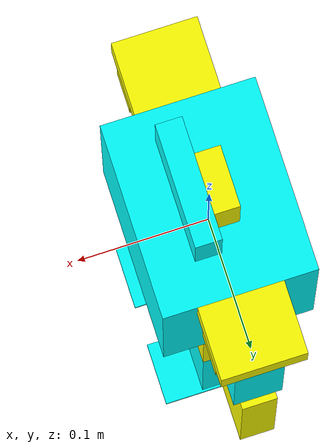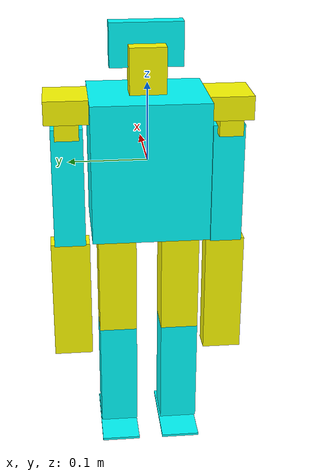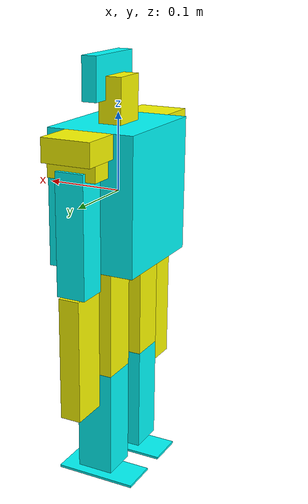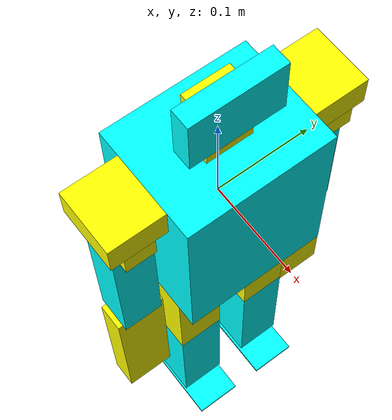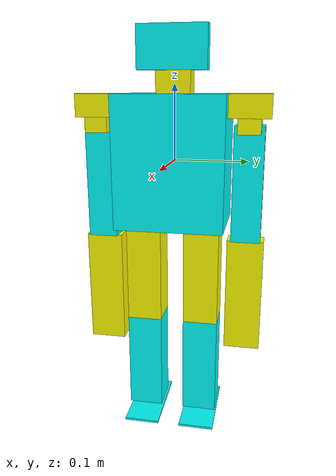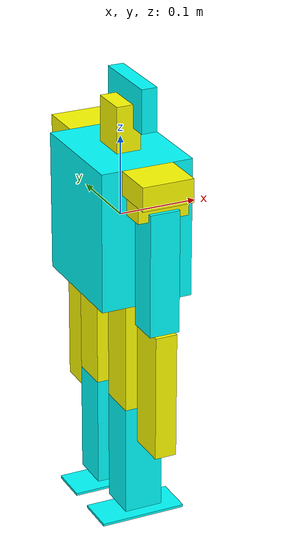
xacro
<?xml version="1.0"?>

<robot name="UMARU" xmlns:xacro="http://www.ros.org/wiki/xacro">

  <xacro:property name="scale" value="1"/>
  <xacro:property name="stack_length" value="0.04"/>
  <xacro:property name="stack_width" value="0.04"/>
  <xacro:property name="stack_tall" value="0.020"/>
  <xacro:property name="stack_mass" value="0.98"/>

  <xacro:macro name="empty_link" params="name">
    <link name="${name}">
      <inertial>
        <mass value="0"/>
        <inertia ixx="0" ixy="0" ixz="0" iyy="0" iyz="0" izz="0" />
      </inertial>
    </link>
  </xacro:macro>
  <xacro:macro name="stack_link" params="name">
    <link name="${name}">
      <visual>
        <origin xyz="0 0 0"/>
        <geometry>
         <box size="${stack_length} ${stack_width} ${stack_tall}"/>
       </geometry>
      </visual>
      <collision>
        <origin xyz="0 0 0"/>
       <geometry>
          <box size="${stack_width} ${stack_width} ${stack_tall}"/>
       </geometry>
      </collision>
      <inertial>
       <mass value="stack_mass"/>
       <origin xyz="0 0 0"/>
       <inertia ixx="${stack_mass * (stack_width**2 + stack_tall**2) / 12}" ixy="0" ixz="0"
               iyy="${stack_mass * (stack_width**2 + stack_tall**2) / 12}" iyz="0"
               izz="${stack_mass * (stack_width**2 + stack_width**2) / 12}" />
      </inertial>
   </link>
  </xacro:macro>

  <material name="cyan">
    <color rgba="0 255 255 1"/>
  </material>

  <material name="yellow">
    <color rgba="255 255 0 1"/>
  </material>

  <xacro:property name="body_length" value="0.117"/>
  <xacro:property name="body_width" value="0.147"/>
  <xacro:property name="body_tall" value="0.176124"/>
  <xacro:property name="body_mass" value="1.80"/>
  <link name="body">
    <visual>
      <geometry>
        <box size="${body_length}  ${body_width} ${body_tall}"/>
      </geometry>
      <origin rpy="0 0 0"/>
      <material name="cyan"/>
    </visual>
    <collision>
      <geometry>
        <box size="${body_length}  ${body_width} ${body_tall}"/>
      </geometry>
      <origin rpy="0 0 0"/>
    </collision>
    <inertial>
      <mass value="${body_mass}"/>
      <origin xyz="0 0 0"/>
      <inertia ixx="${body_mass * (body_width**2 + body_tall**2) / 12}" ixy="0" ixz="0"
               iyy="${body_mass * (body_length**2 + body_tall**2) / 12}" iyz="0"
               izz="${body_mass * (body_width**2 + body_length**2) / 12}" />
    </inertial>
  </link>

  <xacro:property name="h_sho_length" value="0.065"/>
  <xacro:property name="h_sho_width" value="0.055"/>
  <xacro:property name="h_sho_tall" value="0.030"/>
  <xacro:property name="h_sho_mass" value="0.070"/>
  <link name="right_shoulder_horizontal">
    <visual>
      <geometry>
        <box size="${h_sho_length} ${h_sho_width} ${h_sho_tall}"/>
      </geometry>
      <origin rpy="0 0 0" xyz="0 ${- h_sho_width / 2} 0"/>
      <material name="yellow"/>
    </visual>
    <collision>
      <geometry>
        <box size="${h_sho_length} ${h_sho_width} ${h_sho_tall}"/>
      </geometry>
      <origin rpy="0 0 0" xyz="0 ${- h_sho_width / 2} 0"/>
    </collision>
    <inertial>
      <mass value="${h_sho_mass}"/>
      <origin xyz="0 ${- h_sho_width / 2} 0"/>
      <inertia ixx="${h_sho_mass * (h_sho_width**2 + h_sho_tall**2) / 12}" ixy="0" ixz="0"
               iyy="${h_sho_mass * (h_sho_tall**2 + h_sho_length**2) / 12}" iyz="0"
               izz="${h_sho_mass * (h_sho_width**2 + h_sho_length**2) / 12}" />
    </inertial>
  </link>
  <link name="left_shoulder_horizontal">
    <visual>
      <geometry>
         <box size="${h_sho_length} ${h_sho_width} ${h_sho_tall}"/>
      </geometry>
      <origin rpy="0 0 0" xyz="0 ${h_sho_width / 2} 0"/>
      <material name="yellow"/>
    </visual>
    <collision>
      <geometry>
        <box size="${h_sho_length} ${h_sho_width} ${h_sho_tall}"/>
      </geometry>
      <origin rpy="0 0 0" xyz="0 ${h_sho_width / 2} 0"/>
    </collision>
    <inertial>
      <mass value="${h_sho_mass}"/>
      <origin xyz="0 ${h_sho_width / 2} 0"/>
      <inertia ixx="${h_sho_mass * (h_sho_width**2 + h_sho_tall**2) / 12}" ixy="0" ixz="0"
               iyy="${h_sho_mass * (h_sho_tall**2 + h_sho_length**2) / 12}" iyz="0"
               izz="${h_sho_mass * (h_sho_width**2 + h_sho_length**2) / 12}" />
    </inertial>
  </link>

  <xacro:property name="v_sho_length" value="0.065"/>
  <xacro:property name="v_sho_width" value="0.030"/>
  <xacro:property name="v_sho_tall" value="0.020"/>
  <xacro:property name="v_sho_mass" value="0.070"/>
  <link name="right_shoulder_vertical">
    <visual>
      <geometry>
        <box size="${v_sho_length} ${v_sho_width} ${v_sho_tall}"/>
      </geometry>
      <origin rpy="0 0 0" xyz="0 0 ${- v_sho_tall / 2}"/>
      <material name="yellow"/>
    </visual>
    <collision>
      <geometry>
        <box size="${v_sho_length} ${v_sho_width} ${v_sho_tall}"/>
      </geometry>
      <origin rpy="0 0 0" xyz="0 0 ${- v_sho_tall / 2}"/>
    </collision>
    <inertial>
      <mass value="${v_sho_mass}"/>
      <origin xyz="0 0 ${- v_sho_tall / 2}"/>
      <inertia ixx="${v_sho_mass * (v_sho_width**2 + v_sho_tall**2) / 12}" ixy="0" ixz="0"
               iyy="${v_sho_mass * (v_sho_length**2 + v_sho_tall**2) / 12}" iyz="0"
               izz="${v_sho_mass * (v_sho_width**2 + v_sho_length**2) / 12}" />
    </inertial>
  </link>

  <link name="left_shoulder_vertical">
    <visual>
      <geometry>
        <box size="${v_sho_length} ${v_sho_width} ${v_sho_tall}"/>
      </geometry>
      <origin rpy="0 0 0" xyz="0 0 ${- v_sho_tall / 2}"/>
      <material name="yellow"/>
    </visual>
    <collision>
      <geometry>
         <box size="${v_sho_length} ${v_sho_width} ${v_sho_tall}"/>
      </geometry>
      <origin rpy="0 0 0" xyz="0 0 ${- v_sho_tall / 2}"/>
    </collision>
    <inertial>
      <mass value="${v_sho_mass}"/>
      <origin xyz="0 0 ${- v_sho_tall / 2}"/>
      <inertia ixx="${v_sho_mass * (v_sho_width**2 + v_sho_tall**2) / 12}" ixy="0" ixz="0"
               iyy="${v_sho_mass * (v_sho_length**2 + v_sho_tall**2) / 12}" iyz="0"
               izz="${v_sho_mass * (v_sho_width**2 + v_sho_length**2) / 12}" />
    </inertial>
  </link>

  <xacro:property name="arm_length" value="0.038"/>
  <xacro:property name="arm_width" value="0.0402"/>
  <xacro:property name="arm_tall" value="0.156"/>
  <xacro:property name="arm_mass" value="0.120"/>
  <link name="right_arm">
    <visual>
      <geometry>
        <box size="${arm_length} ${arm_width} ${arm_tall}"/>
      </geometry>
      <origin rpy="0 0 0" xyz="0 0 ${- arm_tall / 2}"/>
      <material name="cyan"/>
    </visual>
    <collision>
      <geometry>
        <box size="${arm_length} ${arm_width} ${arm_tall}"/>
      </geometry>
      <origin rpy="0 0 0" xyz="0 0 ${- arm_tall / 2}"/>
    </collision>
    <inertial>
      <mass value="${arm_mass}"/>
      <origin xyz="0 0 ${- arm_tall / 2}"/>
      <inertia ixx="${arm_mass * (arm_width**2 + arm_tall**2) / 12}" ixy="0" ixz="0"
               iyy="${arm_mass * (arm_length**2 + arm_tall**2) / 12}" iyz="0"
               izz="${arm_mass * (arm_width**2 + arm_length**2) / 12}" />
    </inertial>
  </link>

  <link name="left_arm">
    <visual>
      <geometry>
        <box size="${arm_length} ${arm_width} ${arm_tall}"/>
      </geometry>
      <origin rpy="0 0 0" xyz="0 0 ${- arm_tall / 2}"/>
      <material name="cyan"/>
    </visual>
    <collision>
      <geometry>
        <box size="${arm_length} ${arm_width} ${arm_tall}"/>
      </geometry>
      <origin rpy="0 0 0" xyz="0 0 ${- arm_tall / 2}"/>
    </collision>
    <inertial>
      <mass value="${arm_mass}"/>
      <origin xyz="0 0 ${- arm_tall / 2}"/>
      <inertia ixx="${arm_mass * (arm_width**2 + arm_tall**2) / 12}" ixy="0" ixz="0"
               iyy="${arm_mass * (arm_length**2 + arm_tall**2) / 12}" iyz="0"
               izz="${arm_mass * (arm_width**2 + arm_length**2) / 12}" />
    </inertial>
  </link>

  <xacro:property name="hand_length" value="0.0276"/>
  <xacro:property name="hand_width" value="0.0505"/>
  <xacro:property name="hand_tall" value="0.162"/>
  <xacro:property name="hand_mass" value="0.080"/>
  <link name="right_hand">
    <visual>
      <geometry>
        <box size="${hand_length} ${hand_width} ${hand_tall}"/>
      </geometry>
      <origin rpy="0 0 0" xyz="0 0 ${- hand_tall / 2}"/>
      <material name="yellow"/>
    </visual>
    <collision>
      <geometry>
        <box size="${hand_length} ${hand_width} ${hand_tall}"/>
      </geometry>
      <origin rpy="0 0 0" xyz="0 0 ${- hand_tall / 2}"/>
    </collision>
    <inertial>
      <mass value="${hand_mass}"/>
      <origin xyz="0 0 ${- hand_tall / 2}"/>
      <inertia ixx="${hand_mass * (hand_width**2 + hand_tall**2) / 12}" ixy="0" ixz="0"
               iyy="${hand_mass * (hand_length**2 + hand_tall**2) / 12}" iyz="0"
               izz="${hand_mass * (hand_width**2 + hand_length**2) / 12}" />
    </inertial>
  </link>
  <link name="left_hand">
    <visual>
      <geometry>
        <box size="${hand_length} ${hand_width} ${hand_tall}"/>
      </geometry>
      <origin rpy="0 0 0" xyz="0 0 ${- hand_tall / 2}"/>
      <material name="yellow"/>
    </visual>
    <collision>
      <geometry>
        <box size="${hand_length} ${hand_width} ${hand_tall}"/>
      </geometry>
      <origin rpy="0 0 0" xyz="0 0 ${- hand_tall / 2}"/>
    </collision>
    <inertial>
      <mass value="${hand_mass}"/>
      <origin xyz="0 0 ${- hand_tall / 2}"/>
      <inertia ixx="${hand_mass * (hand_width**2 + hand_tall**2) / 12}" ixy="0" ixz="0"
               iyy="${hand_mass * (hand_length**2 + hand_tall**2) / 12}" iyz="0"
               izz="${hand_mass * (hand_width**2 + hand_length**2) / 12}" />
    </inertial>
  </link>
  <!-- EMPTY LINK-->
  <xacro:empty_link name="head_tilt"/>
  <xacro:empty_link name="right_hip"/>
  <xacro:empty_link name="left_hip"/>

  <xacro:property name="leg_width" value="0.049"/>
  <xacro:property name="leg_tall" value="0.143"/>
  <xacro:property name="leg_mass" value="0.300"/>

<!-- HIP TEST WITH UPPER LEG EMPTY LINK -->

  <link name="left_upper_leg">
    <visual>
      <geometry>
        <box size="${leg_width} ${leg_width} ${leg_tall}"/>
      </geometry>
      <origin xyz="0 0 ${- leg_tall/2}" rpy="0 0 0"/>
      <material name="yellow"/>
    </visual>
    <collision>
      <geometry>
        <box size="${leg_width} ${leg_width} ${leg_tall}"/>
      </geometry>
      <origin xyz="0 0 ${- leg_tall/2}" rpy="0 0 0"/>
    </collision>
   <inertial>
      <mass value="${leg_mass}"/>
      <origin xyz="0 0 ${-leg_tall/2}"/>
      <inertia ixx="${leg_mass* (leg_width**2 + leg_tall**2) / 12}" ixy="0" ixz="0"
               iyy="${leg_mass * (leg_width**2 + leg_tall**2) / 12}" iyz="0"
               izz="${leg_mass * (leg_width**2 + leg_width**2) / 12}" />
    </inertial>
  </link>

  <link name="right_upper_leg">
    <visual>
      <geometry>
        <box size="${leg_width} ${leg_width} ${leg_tall}"/>
      </geometry>
      <origin xyz="0 0 ${- leg_tall/2}" rpy="0 0  0"/>
      <material name="yellow"/>
    </visual>
    <collision>
      <geometry>
        <box size="${leg_width} ${leg_width} ${leg_tall}"/>
      </geometry>
      <origin xyz="0 0 ${- leg_tall/2}" rpy="0 0 0"/>
    </collision>
     <inertial>
      <mass value="${leg_mass}"/>
      <origin xyz="0 0 ${-leg_tall/2}"/>
      <inertia ixx="${leg_mass* (leg_width**2 + leg_tall**2) / 12}" ixy="0" ixz="0"
               iyy="${leg_mass * (leg_width**2 + leg_tall**2) / 12}" iyz="0"
               izz="${leg_mass * (leg_width**2 + leg_width**2) / 12}" />
    </inertial>
  </link>

  <xacro:stack_link name="right_hip_roll"/>
  <xacro:stack_link name="left_hip_roll"/>

  <link name="left_lower_leg">
    <visual>
      <origin xyz="0 0 ${- leg_tall/2}" rpy="0 0 0" />
      <material name="cyan" />
      <geometry>
        <box size="${leg_width} ${leg_width} ${leg_tall}" />
      </geometry>
    </visual>
    <collision>
      <origin xyz="0 0 ${- leg_tall/2}" rpy="0 0 0" />
      <geometry>
        <box size="${leg_width} ${leg_width} ${leg_tall}" />
      </geometry>
    </collision>
    <inertial>
      <mass value="${leg_mass}"/>
      <origin xyz="0 0 ${- leg_tall/2}"/>
      <inertia ixx="${leg_mass* (leg_width**2 + leg_tall**2) / 12}" ixy="0" ixz="0"
               iyy="${leg_mass * (leg_width**2 + leg_tall**2) / 12}" iyz="0"
               izz="${leg_mass * (leg_width**2 + leg_width**2) / 12}" />
    </inertial>
  </link>

  <link name="right_lower_leg">
    <visual>
      <origin xyz="0 0 ${- leg_tall/2}" rpy="0 0 0" />
      <material name="cyan" />
      <geometry>
        <box size="${leg_width} ${leg_width} ${leg_tall}" />
      </geometry>
    </visual>
    <collision>
      <origin xyz="0 0 ${- leg_tall/2}" rpy="0 0 0" />
      <geometry>
        <box size="${leg_width} ${leg_width} ${leg_tall}" />
      </geometry>
    </collision>
    <inertial>
      <mass value="${leg_mass}"/>
      <origin xyz="0 0 ${- leg_tall/2}"/>
      <inertia ixx="${leg_mass* (leg_width**2 + leg_tall**2) / 12}" ixy="0" ixz="0"
               iyy="${leg_mass * (leg_width**2 + leg_tall**2) / 12}" iyz="0"
               izz="${leg_mass * (leg_width**2 + leg_width**2) / 12}" />
    </inertial>
  </link>

  <xacro:property name="foot_length" value="0.11"/>
  <xacro:property name="foot_width" value="0.050"/>
  <xacro:property name="foot_tall" value="0.0031"/>
  <xacro:property name="foot_mass" value="0.4500"/>
  <!--foot Z origin is not correctly set (for test)-->
  <link name="left_foot">
    <visual>
      <origin xyz="0 0 ${-foot_tall/2 }" rpy="0 0 0" />
      <material name="cyan" />
      <geometry>
        <box size="${foot_length} ${foot_width} ${foot_tall}" />
      </geometry>
    </visual>
    <collision>
      <origin xyz="0 0 ${-foot_tall/2}" rpy="0 0 0" />
      <geometry>
        <box size="${foot_length} ${foot_width} ${foot_tall}" />
      </geometry>
    </collision>
   <inertial>
      <mass value="${foot_mass}"/>
      <origin xyz="0 0 ${-foot_tall/2 }"/>
      <inertia ixx="${foot_mass* (foot_width**2 + foot_tall**2) / 12}" ixy="0" ixz="0"
               iyy="${foot_mass* (foot_length**2 + foot_tall**2) / 12}" iyz="0"
               izz="${foot_mass* (foot_width**2 + foot_length**2) / 12}" />
    </inertial>
  </link>

  <link name="right_foot">
    <visual>
      <origin xyz="0 0 ${-foot_tall/2 }" rpy="0 0 0" />
      <material name="cyan" />
      <geometry>
        <box size="${foot_length} ${foot_width} ${foot_tall}" />
      </geometry>
    </visual>
    <collision>
      <origin xyz="0 0 ${-foot_tall/2 }" rpy="0 0 0" />
      <geometry>
        <box size="${foot_length} ${foot_width} ${foot_tall}" />
      </geometry>
    </collision>
    <inertial>
      <mass value="${foot_mass}"/>
      <origin xyz="0 0 ${-foot_tall/2 }"/>
      <inertia ixx="${foot_mass* (foot_width**2 + foot_tall**2) / 12}" ixy="0" ixz="0"
               iyy="${foot_mass* (foot_length**2 + foot_tall**2) / 12}" iyz="0"
               izz="${foot_mass* (foot_width**2 + foot_length**2) / 12}" />
    </inertial>
  </link>

  <xacro:stack_link name="right_ankle_roll"/>
  <xacro:stack_link name="left_ankle_roll"/>

  <xacro:property name="neck_length" value="0.031"/>
  <xacro:property name="neck_width" value="0.046"/>
  <xacro:property name="neck_tall" value="0.058"/>
  <xacro:property name="neck_mass" value="0.180"/>
  <link name="neck">
    <visual>
      <origin xyz="0 0 0" rpy="0 0 0" />
      <material name="yellow" />
      <geometry>
        <box size="${neck_length} ${neck_width} ${neck_tall}" />
      </geometry>
    </visual>
    <collision>
      <origin xyz="0 0 0" rpy="0 0 0" />
      <geometry>
        <box size="${neck_length} ${neck_width} ${neck_tall}" />
      </geometry>
    </collision>
    <inertial>
      <mass value="${neck_mass}"/>
      <origin xyz="0 0 0"/>
      <inertia ixx="${neck_mass * (neck_width**2 + neck_tall**2) / 12}" ixy="0" ixz="0"
               iyy="${neck_mass * (neck_length**2 + neck_tall**2) / 12}" iyz="0"
               izz="${neck_mass * (neck_width**2 + neck_length**2) / 12}" />
    </inertial>
  </link>

  <xacro:property name="head_length" value="0.02"/>
  <xacro:property name="head_width" value="0.092"/>
  <xacro:property name="head_tall" value="0.055"/>
  <xacro:property name="head_mass" value="0.05"/>

  <link name="head">
    <visual>
      <origin xyz="0 0 ${head_tall / 2}" rpy="0 0 0" />
      <material name="cyan" />
      <geometry>
        <box size="${head_length} ${head_width} ${head_tall}" />
      </geometry>
    </visual>
    <collision>
      <origin xyz="0 0 ${head_tall / 2}" rpy="0 0 0" />
      <geometry>
        <box size="${head_length} ${head_width} ${head_tall}" />
      </geometry>
    </collision>
    <inertial>
      <mass value="${head_mass}"/>
      <origin xyz="0 0 ${head_tall / 2}"/>
      <inertia ixx="${head_mass * (head_width**2 + head_tall**2) / 12}" ixy="0" ixz="0"
               iyy="${head_mass * (head_length**2 + head_tall**2) / 12}" iyz="0"
               izz="${head_mass * (head_width**2 + head_length**2) / 12}" />
    </inertial>
  </link>

<!--JOINT-->
  <joint name="R_SHO_PITCH" type="revolute" > <!-- JOINT_ID = 1 -->
    <axis xyz="0 -1 0"/>
    <parent link="body"/>
    <child link="right_shoulder_horizontal"/>
    <origin xyz="0 ${-body_width / 2} ${(body_tall / 2) - (h_sho_tall/2)}"/>
    <limit effort="1000.0" lower="${-pi}" upper="${pi}" velocity="0.5" />
  </joint>

  <joint name="L_SHO_PITCH" type="revolute"> <!-- JOINT_ID = 2 -->
    <axis xyz="0 -1 0"/>
    <parent link="body"/>
    <child link="left_shoulder_horizontal"/>
    <origin xyz="0 ${body_width / 2} ${(body_tall / 2) - (h_sho_tall/2)}"/>
    <limit effort="1000.0" lower="${-pi}" upper="${pi}" velocity="0.5" />
  </joint>

  <joint name="R_SHO_ROLL" type="revolute" > <!-- JOINT_ID = 3 -->
    <limit effort="1000.0" lower="0.0" upper="${pi/2}" velocity="0.5" />
    <axis xyz="-1 0 0"/>
    <parent link="right_shoulder_vertical"/>
    <child link="right_arm"/>
    <origin xyz="0 0 ${-v_sho_tall/2}"/>
  </joint>

  <joint name="L_SHO_ROLL" type="revolute" > <!-- JOINT_ID = 4 -->
    <axis xyz="1 0 0"/>
    <limit effort="1000.0" lower="0.0" upper="${pi/2}" velocity="0.5"/>
    <parent link="left_shoulder_vertical"/>
    <child link="left_arm"/>
    <origin xyz="0 0 ${-v_sho_tall/2}"/>
  </joint>

  <joint name="R_ELBOW" type="revolute"> <!-- JOINT_ID = 5 -->
    <axis xyz="0 -1 0"/>
    <limit effort="1000.0" lower="${-1.5*pi}" upper="${1.5*pi}" velocity="0.5"/>
    <parent link="right_arm"/>
    <child link="right_hand"/>
    <origin xyz="0 0 ${-arm_tall}"/>
  </joint>

  <joint name="L_ELBOW" type="revolute"> <!-- JOINT_ID = 6 -->
    <axis xyz="0 -1 0"/>
    <limit effort="1000.0" lower="${-1.5*pi}" upper="${1.5*pi}" velocity="0.5"/>
    <parent link="left_arm"/>
    <child link="left_hand"/>
    <origin xyz="0 0 ${-arm_tall}"/>
  </joint>

  <joint name="R_HIP_ROLL" type="revolute"> <!-- JOINT_ID = 7-->
    <parent link="right_hip" />
    <child link="right_hip_roll" />
    <axis xyz="-1 0 0" />
    <origin xyz="0 0 0" />
    <limit effort="1000.0" velocity="0.5" lower="${-pi}" upper="${pi}"/>
  </joint>

  <joint name="L_HIP_ROLL" type="revolute"> <!-- JOINT_ID = 8-->
    <parent link="left_hip" />
    <child link="left_hip_roll" />
    <axis xyz="1 0 0" />
    <origin xyz="0 0 0" />
    <limit effort="1000.0" velocity="0.5" lower="${-pi}" upper="${pi}"/>
  </joint>

  <joint name="R_HIP_YAW" type="revolute"> <!-- JOINT_ID = 9 -->
    <parent link="body"/>
    <child link="right_hip"/>
    <origin xyz="0 ${-body_width/2 + leg_width/1.5} ${-body_tall/2}"/>
    <axis xyz="0 0 -1" />
    <limit effort="1000.0" velocity="0.5" lower="${-pi/2}" upper="${pi}" />
  </joint>

  <joint name="L_HIP_YAW" type="revolute"> <!-- JOINT_ID = 10 -->
    <parent link="body"/>
    <child link="left_hip"/>
    <origin xyz="0 ${body_width/2 - leg_width/1.5} ${-body_tall/2}"/>
    <axis xyz="0 0 1" />
    <limit effort="1000.0" velocity="0.5" lower="${-pi/2}" upper="${pi}" />
  </joint>

  <joint name="R_HIP_PITCH" type="revolute"> <!-- JOINT_ID = 11-->
    <parent link="right_hip_roll" />
    <child link="right_upper_leg" />
    <axis xyz="0 -1 0" />
    <origin xyz="0 0 0" />
    <limit effort="1000.0" velocity="0.5" lower="${-pi}" upper="${pi}"/>
  </joint>

  <joint name="L_HIP_PITCH" type="revolute"> <!-- JOINT_ID = 12-->
    <parent link="left_hip_roll" />
    <child link="left_upper_leg" />
    <axis xyz="0 -1 0" />
    <origin xyz="0 0 0" />
    <limit effort="1000.0" velocity="0.5" lower="${-pi}" upper="${pi}"/>
  </joint>

  <joint name="R_KNEE" type="revolute"> <!-- JOINT_ID = 13 -->
    <parent link="right_upper_leg" />
    <child link="right_lower_leg" />
    <axis xyz="0 1 0" />
    <origin xyz="0 0 ${- leg_tall}" />
    <limit effort="1000.0" velocity="0.5" lower="${-pi}" upper="${pi}"/>
  </joint>

  <joint name="L_KNEE" type="revolute"> <!-- JOINT_ID = 14 -->
    <parent link="left_upper_leg" />
    <child link="left_lower_leg" />
    <axis xyz="0 1 0" />
    <origin xyz="0 0 ${- leg_tall}" />
    <limit effort="1000.0" velocity="0.5" lower="${-pi}" upper="${pi}"/>
  </joint>

  <joint name="R_ANK_ROLL" type="revolute"> <!-- JOINT_ID = 15 -->
    <parent link="right_lower_leg" />
    <child link="right_ankle_roll" />
    <axis xyz="-1 0 0" />
    <origin xyz="0 0 ${- leg_tall + (stack_tall/2)}" />
    <limit effort="1000.0" velocity="0.5" lower="0" upper="${pi}"/>
  </joint>

  <joint name="L_ANK_ROLL" type="revolute"> <!-- JOINT_ID = 16 -->
    <parent link="left_lower_leg" />
    <child link="left_ankle_roll" />
    <axis xyz="1 0 0" />
    <origin xyz="0 0 ${- leg_tall + (stack_tall/2)}" />
    <limit effort="1000.0" velocity="0.5" lower="0" upper="${pi}"/>
  </joint>

  <joint name="R_ANK_PITCH" type="revolute"> <!-- JOINT_ID = 17 -->
    <parent link="right_ankle_roll" />
    <child link="right_foot" />
    <axis xyz="0 -1 0" />
    <origin xyz="0 0 ${-stack_tall}" />
    <limit effort="1000.0" velocity="0.5" lower="${-pi}" upper="${pi}"/>
    <dynamics damping="1000" friction="1000"/>
  </joint>

  <joint name="L_ANK_PITCH" type="revolute"> <!-- JOINT_ID = 18 -->
    <parent link="left_ankle_roll" />
    <child link="left_foot" />
    <axis xyz="0 -1 0" />
    <origin xyz="0 0 ${-stack_tall}" />
    <limit effort="1000.0" velocity="0.5" lower="${-pi}" upper="${pi}"/>
  </joint>

  <joint name="HEAD_PAN" type="revolute"> <!-- JOINT_ID = 19 -->
    <parent link="body"/>
    <child link="neck"/>
    <axis xyz="0 0 1"/>
    <origin xyz="0 0 ${(body_tall/2) + (neck_tall/2)}"/>
    <limit effort="1000.0" velocity="0.5" lower="${-pi}" upper="${pi}"/>
  </joint>

  <joint name="HEAD_TILT" type="revolute"> <!-- JOINT_ID = 20 -->
    <parent link="head_tilt"/>
    <child link="head"/>
    <axis xyz="0 1 0"/>
    <origin xyz="0 0 0"/>
    <limit effort="1000.0" velocity="0.5" lower="${-4*pi/10}" upper="${4*pi/10}"/>
  </joint>

<!--Fixed Joint-->
  <joint name="RIGHT_SHO" type="fixed">
    <parent link="right_shoulder_horizontal"/>
    <child link="right_shoulder_vertical"/>
    <origin xyz="0 ${-h_sho_width/2} ${-h_sho_tall/2}"/>
  </joint>

  <joint name="LEFT_SHO" type="fixed">
    <parent link="left_shoulder_horizontal"/>
    <child link="left_shoulder_vertical"/>
    <origin xyz="0 ${h_sho_width/2} ${-h_sho_tall/2}"/>
  </joint>

  <joint name="NECK_TO_HEAD" type="fixed">
    <parent link="neck"/>
    <child link="head_tilt"/>
    <origin xyz="${neck_length/2} 0 0"/>
  </joint>

</robot>
